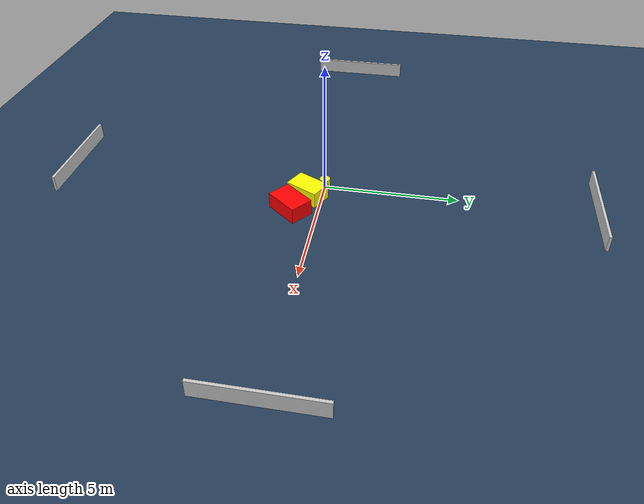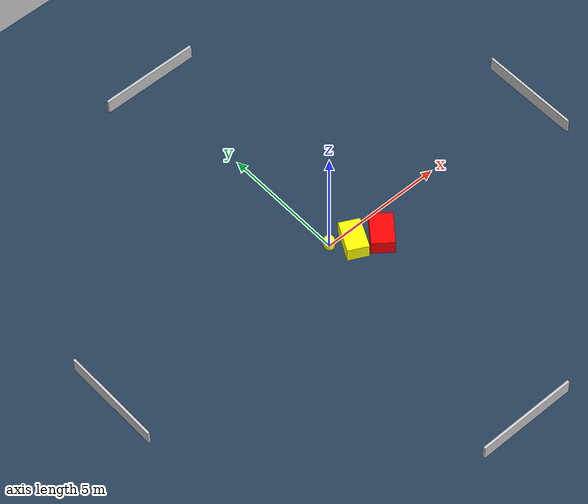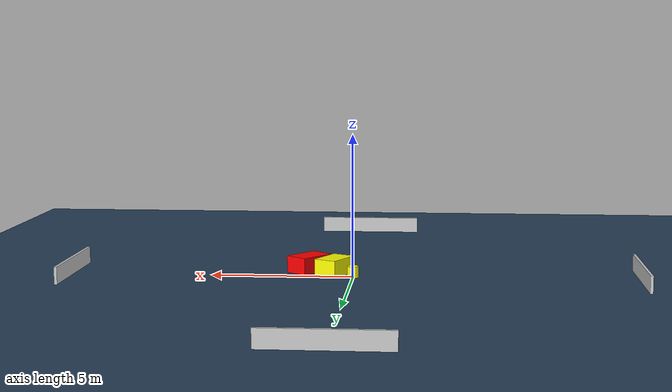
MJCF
<?xml version="1.0" ?>
<mujoco model="generated_environment">
  <option timestep="0.01" integrator="RK4" cone="elliptic"/>
  <default>
    <geom density="1"/>
  </default>
  <asset>
    <texture builtin="gradient" height="3072" name="skybox" rgb1="0.3 0.5 0.7" rgb2="0 0 0" type="skybox" width="512"/>
    <texture builtin="checker" height="300" name="groundplane" rgb1="0.2 0.3 0.4" rgb2="0.1 0.2 0.3" type="2d" width="300"/>
    <material name="groundplane" reflectance="0.2" texrepeat="5 5" texture="groundplane"/>
  </asset>
  <worldbody>
    <light dir="0 0 -1" directional="true" pos="0 0 1.5"/>
    <geom condim="3" friction="0.5 0.005 0.001" material="groundplane" name="floor" pos="0 0 0" size="0 0 0.05" type="plane"/>
    <body name="walls">
      <geom name="wall_1" condim="4" pos="-10.0 0.0 0.3" rgba="0.800000011920929 0.800000011920929 0.800000011920929 1.0" size="0.05 2.0 0.3" type="box"/>
      <geom name="wall_2" condim="4" pos="10.0 0.0 0.3" rgba="0.800000011920929 0.800000011920929 0.800000011920929 1.0" size="0.05 2.0 0.3" type="box"/>
      <geom name="wall_3" condim="4" pos="0.0 -10.0 0.3" rgba="0.800000011920929 0.800000011920929 0.800000011920929 1.0" size="2.0 0.05 0.3" type="box"/>
      <geom name="wall_4" condim="4" pos="0.0 10.0 0.3" rgba="0.800000011920929 0.800000011920929 0.800000011920929 1.0" size="2.0 0.05 0.3" type="box"/>
    </body>
    <body name="robot">
      <joint name="joint_x" type="slide" pos="0 0 0" axis="1 0 0"/>
      <joint name="joint_y" type="slide" pos="0 0 0" axis="0 1 0"/>
      <geom name="robot" type="cylinder" pos="0.0 0.0 0.2" size="0.2 0.2 0.0" mass="5.0" friction="1.0 0.005 0.0001" condim="4" rgba="1.0 1.0 0.0 1.0"/>
    </body>
    <body name="obstacle_1_movable">
      <geom name="obstacle_1_movable" condim="4" pos="0.6970532221677165 -0.5290301803780093 0.3" euler="0 0 152.9294845754765" friction="0.0 0.005 0.001" rgba="1.0 1.0 0.0 1.0" size="0.4153171054290322 0.6423470224907378 0.3" type="box" mass="0.1"/>
      <joint type="free"/>
    </body>
    <body name="obstacle_2_static">
      <geom name="obstacle_2_static" condim="4" pos="1.6374223973515831 -0.9919540157536774 0.3" euler="0 0 231.01878741579768" friction="0.0 0.005 0.001" rgba="1.0 0.0 0.0 1.0" size="0.669295323034311 0.44299325302627396 0.3" type="box"/>
    </body>
  </worldbody>
  <actuator>
    <motor name="actuator_x" joint="joint_x" gear="1" ctrlrange="-1 1"/>
    <motor name="actuator_y" joint="joint_y" gear="1" ctrlrange="-1 1"/>
  </actuator>
</mujoco>
